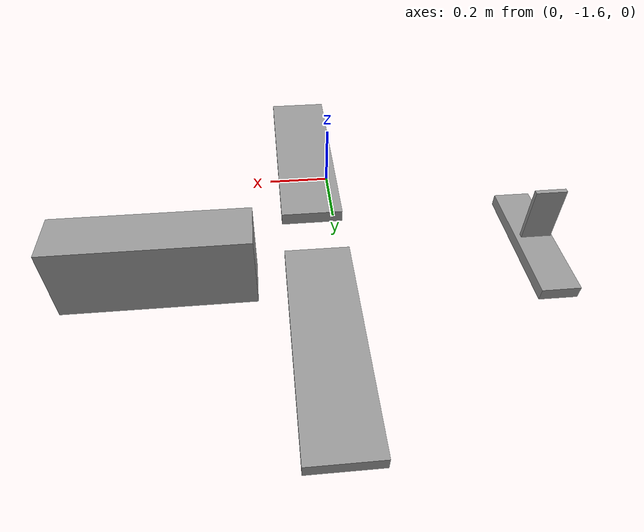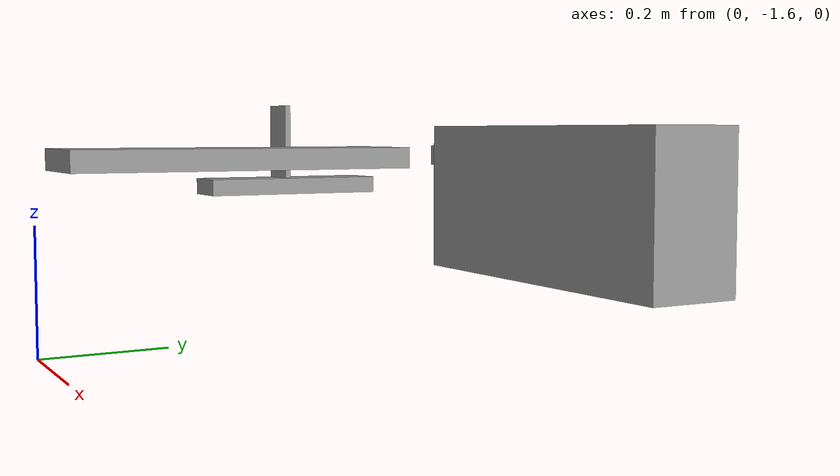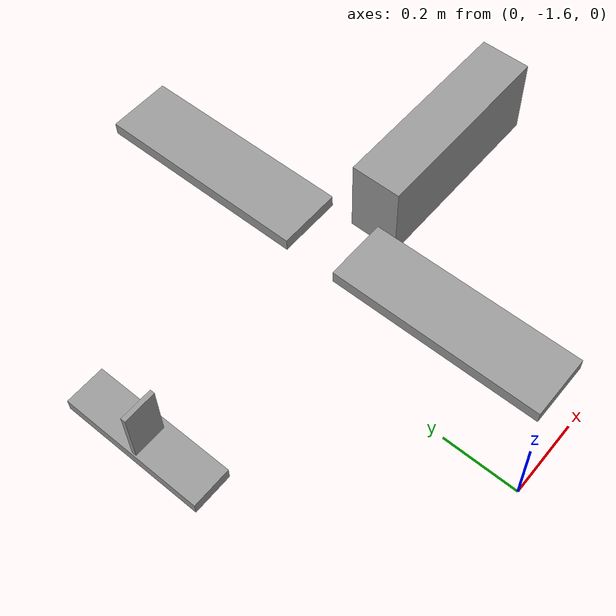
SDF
<?xml version='1.0'?>
<sdf version='1.6'>
  <model name='pitcheron'>
    <pose>0 0 0.246 0 0 0</pose>
    <link name='base_link'>
      <inertial>
        <pose>0 0 0 0 0 0</pose>
        <mass>2</mass>
        <inertia>
          <ixx>0.197563</ixx>
          <ixy>0</ixy>
          <ixz>0</ixz>
          <iyy>0.1458929</iyy>
          <iyz>0</iyz>
          <izz>0.1477</izz>
        </inertia>
      </inertial>
      <pose frame=''>0.5 -1.00013 -0.003977 0 -0.000163 0</pose>
      <collision name='base_link_collision'>
        <laser_retro>0</laser_retro>
        <max_contacts>10</max_contacts>
        <pose frame=''>0 0 0 0 -0 0</pose>
        <geometry>
          <box>
            <size>0.5 0.127582 0.209457</size>
          </box>
        </geometry>
        <surface>
          <contact>
            <ode>
              <max_vel>10</max_vel>
              <min_depth>0.01</min_depth>
            </ode>
          </contact>
        </surface>
      </collision>
      <visual name='base_link_visual'>
        <pose frame=''>0 0 0 0 -0 0</pose>
        <geometry>
          <box>
            <size>0.5 0.127582 0.209457</size>
          </box>
        </geometry>
        <material>
          <lighting>1</lighting>
          <script>
            <uri>file://media/materials/scripts/gazebo.material</uri>
            <name>Gazebo/Grey</name>
          </script>
          <shader type='pixel'/>
          <emissive>0 0 0 1</emissive>
        </material>
        <transparency>0</transparency>
        <cast_shadows>1</cast_shadows>
      </visual>
    </link>
    <plugin name='barometer_plugin' filename='libgazebo_barometer_plugin.so'>
      <robotNamespace/>
      <pubRate>50</pubRate>
      <baroTopic>/baro</baroTopic>
    </plugin>
    <plugin name='groundtruth_plugin' filename='libgazebo_groundtruth_plugin.so'>
      <robotNamespace/>
    </plugin>
    <plugin name='magnetometer_plugin' filename='libgazebo_magnetometer_plugin.so'>
      <robotNamespace/>
      <pubRate>100</pubRate>
      <noiseDensity>0.0004</noiseDensity>
      <randomWalk>6.4e-06</randomWalk>
      <biasCorrelationTime>600</biasCorrelationTime>
      <magTopic>/mag</magTopic>
    </plugin>
    <plugin name='mavlink_interface' filename='libgazebo_mavlink_interface.so'>
      <robotNamespace/>
      <imuSubTopic>/imu</imuSubTopic>
      <magSubTopic>/mag</magSubTopic>
      <baroSubTopic>/baro</baroSubTopic>
      <mavlink_addr>INADDR_ANY</mavlink_addr>
      <mavlink_tcp_port>4560</mavlink_tcp_port>
      <mavlink_udp_port>14560</mavlink_udp_port>
      <serialEnabled>0</serialEnabled>
      <serialDevice>/dev/ttyACM0</serialDevice>
      <baudRate>921600</baudRate>
      <qgc_addr>INADDR_ANY</qgc_addr>
      <qgc_udp_port>14550</qgc_udp_port>
      <sdk_addr>INADDR_ANY</sdk_addr>
      <sdk_udp_port>14540</sdk_udp_port>
      <hil_mode>0</hil_mode>
      <hil_state_level>0</hil_state_level>
      <enable_lockstep>1</enable_lockstep>
      <use_tcp>1</use_tcp>
      <motorSpeedCommandPubTopic>/gazebo/command/motor_speed</motorSpeedCommandPubTopic>
      <control_channels>
        <channel name='left_wing_control'>
          <input_index>0</input_index>
          <input_offset>0</input_offset>
          <input_scaling>1</input_scaling>
          <zero_position_disarmed>0</zero_position_disarmed>
          <zero_position_armed>0</zero_position_armed>
          <joint_control_type>position_kinematic</joint_control_type>
          <joint_name>left_wing_joint</joint_name>
        </channel>
        <channel name='right_wing_control'>
          <input_index>1</input_index>
          <input_offset>0</input_offset>
          <input_scaling>1</input_scaling>
          <zero_position_disarmed>0</zero_position_disarmed>
          <zero_position_armed>0</zero_position_armed>
          <joint_control_type>position_kinematic</joint_control_type>
          <joint_name>right_wing_joint</joint_name>
        </channel>
      </control_channels>
    </plugin>

    <include>
      <uri>model://gps</uri>
      <pose>0.5 -1.00013 0 0 0 0</pose>
      <name>gps</name>
    </include>
    <joint name='gps_joint' type='fixed'>
      <child>gps::link</child>
      <parent>base_link</parent>
    </joint>

    <link name='imu_link'>
      <pose>0.5 -1.000130 0 0 0 0</pose>
      <inertial>
        <pose>0 0 0 0 0 0</pose>
        <mass>0.015</mass>
        <inertia>
          <ixx>1e-05</ixx>
          <ixy>0</ixy>
          <ixz>0</ixz>
          <iyy>1e-05</iyy>
          <iyz>0</iyz>
          <izz>1e-05</izz>
        </inertia>
      </inertial>
    </link>
    <joint name='imu_joint' type='revolute'>
      <parent>base_link</parent>
      <child>imu_link</child>
      <axis>
        <xyz>1 0 0</xyz>
        <limit>
          <lower>0</lower>
          <upper>0</upper>
          <effort>0</effort>
          <velocity>0</velocity>
        </limit>
        <dynamics>
          <spring_reference>0</spring_reference>
          <spring_stiffness>0</spring_stiffness>
        </dynamics>
        <use_parent_model_frame>1</use_parent_model_frame>
      </axis>
    </joint>
    <plugin name='gazebo_imu_plugin' filename='libgazebo_imu_plugin.so'>
      <robotNamespace/>
      <linkName>imu_link</linkName>
      <imuTopic>/imu</imuTopic>
      <gyroscopeNoiseDensity>0.0003394</gyroscopeNoiseDensity>
      <gyroscopeRandomWalk>3.8785e-05</gyroscopeRandomWalk>
      <gyroscopeBiasCorrelationTime>1000.0</gyroscopeBiasCorrelationTime>
      <gyroscopeTurnOnBiasSigma>0.0087</gyroscopeTurnOnBiasSigma>
      <accelerometerNoiseDensity>0.004</accelerometerNoiseDensity>
      <accelerometerRandomWalk>0.006</accelerometerRandomWalk>
      <accelerometerBiasCorrelationTime>300.0</accelerometerBiasCorrelationTime>
      <accelerometerTurnOnBiasSigma>0.196</accelerometerTurnOnBiasSigma>
    </plugin>

    <link name='airspeed_link'>
      <pose>0.5 -1.000130 0 0 0 0</pose>
      <inertial>
        <pose>0 0 0 0 0 0</pose>
        <mass>0.015</mass>
        <inertia>
          <ixx>1e-05</ixx>
          <ixy>0</ixy>
          <ixz>0</ixz>
          <iyy>1e-05</iyy>
          <iyz>0</iyz>
          <izz>1e-05</izz>
        </inertia>
      </inertial>
    </link>
    <joint name='airspeed_joint' type='revolute'>
      <parent>base_link</parent>
      <child>airspeed_link</child>
      <axis>
        <xyz>1 0 0</xyz>
        <limit>
          <lower>0</lower>
          <upper>0</upper>
          <effort>0</effort>
          <velocity>0</velocity>
        </limit>
        <dynamics>
          <spring_reference>0</spring_reference>
          <spring_stiffness>0</spring_stiffness>
        </dynamics>
        <use_parent_model_frame>1</use_parent_model_frame>
      </axis>
    </joint>
    <plugin name='airspeed_plugin' filename='libgazebo_airspeed_plugin.so'>
      <robotNamespace/>
      <linkName>airspeed_link</linkName>
    </plugin>

    <link name='right_wing_link'>
      <inertial>
        <mass>0.00000001</mass>
        <inertia>
          <ixx>0.000001</ixx>
          <ixy>0.0</ixy>
          <iyy>0.000001</iyy>
          <ixz>0.0</ixz>
          <iyz>0.0</iyz>
          <izz>0.000001</izz>
        </inertia>
        <pose>0 0.3 0 0.00 0 0.0</pose>
      </inertial>
      <pose frame=''>0.1 -1.32641 0.052084 0 0 0</pose>
      <visual name='right_wing_visual'>
        <pose frame=''>0 0 0 0 -0 0</pose>
        <geometry>
          <box>
            <size>0.154694 0.521737 0.032125</size>
          </box>
        </geometry>
        <material>
          <lighting>1</lighting>
          <script>
            <uri>file://media/materials/scripts/gazebo.material</uri>
            <name>Gazebo/Grey</name>
          </script>
          <shader type='pixel'/>
          <emissive>0 0 0 1</emissive>
        </material>
        <transparency>0</transparency>
        <cast_shadows>1</cast_shadows>
      </visual>
    </link>
    <joint name='right_wing_joint' type='revolute'>
      <parent>base_link</parent>
      <child>right_wing_link</child>
      <pose frame=''>0 0 0 0 -0 0</pose>
      <axis>
        <xyz>0 1 0</xyz>
        <use_parent_model_frame>0</use_parent_model_frame>
        <limit>
          <!-- -30/+30 deg. -->
          <lower>-0.53</lower>
          <upper>0.53</upper>
        </limit>
        <dynamics>
          <damping>1.000</damping>
        </dynamics>
      </axis>
      <physics>
        <ode>
          <implicit_spring_damper>1</implicit_spring_damper>
        </ode>
      </physics>
    </joint>
    <plugin name='right_wing_plugin' filename='libLiftDragPlugin.so'>
      <a0>0.174533</a0>
      <cla>4.752798721</cla>
      <cda>0.6417112299</cda>
      <cma>0.0</cma>
      <alpha_stall>0.3391428111</alpha_stall>
      <cla_stall>-3.85</cla_stall>
      <cda_stall>-0.9233984055</cda_stall>
      <cma_stall>0</cma_stall>
      <cp>-0.05 -0.45 0.05</cp>
      <area>0.6</area>
      <air_density>1.2041</air_density>
      <forward>1 0 0</forward>
      <upward>0 0 1</upward>
      <link_name>base_link</link_name>
      <control_joint_name>right_wing_joint</control_joint_name>
      <control_joint_rad_to_cl>-0.5</control_joint_rad_to_cl>
      <robotNamespace/>
      <windSubTopic>world_wind</windSubTopic>
    </plugin>

    <link name='left_wing_link'>
      <inertial>
        <mass>0.00000001</mass>
        <inertia>
          <ixx>0.000001</ixx>
          <ixy>0.0</ixy>
          <iyy>0.000001</iyy>
          <ixz>0.0</ixz>
          <iyz>0.0</iyz>
          <izz>0.000001</izz>
        </inertia>
        <pose>0 0.3 0 0.00 0 0.0</pose>
      </inertial>
      <pose frame=''>0.1 -0.676921 0.052084 0 -0.000489 0</pose>
      <visual name='left_wing_visual'>
        <pose frame=''>0 0 0 0 -0 0</pose>
        <geometry>
          <box>
            <size>0.154694 0.521737 0.032125</size>
          </box>
        </geometry>
        <material>
          <lighting>1</lighting>
          <script>
            <uri>file://media/materials/scripts/gazebo.material</uri>
            <name>Gazebo/Grey</name>
          </script>
          <shader type='pixel'/>
          <emissive>0 0 0 1</emissive>
        </material>
        <transparency>0</transparency>
        <cast_shadows>1</cast_shadows>
      </visual>
    </link>
    <joint name='left_wing_joint' type='revolute'>
      <parent>base_link</parent>
      <child>left_wing_link</child>
      <pose frame=''>0 0 0 0 -0 0</pose>
      <axis>
        <xyz>0 1 0</xyz>
        <use_parent_model_frame>0</use_parent_model_frame>
        <limit>
          <lower>-0.53</lower>
          <upper>0.53</upper>
        </limit>
        <dynamics>
          <damping>1.000</damping>
        </dynamics>
      </axis>
      <physics>
        <ode>
          <implicit_spring_damper>1</implicit_spring_damper>
        </ode>
      </physics>
    </joint>
    <plugin name='left_wing_plugin' filename='libLiftDragPlugin.so'>
      <a0>>0.174533</a0>
      <cla>4.752798721</cla>
      <cda>0.6417112299</cda>
      <cma>0.0</cma>
      <alpha_stall>0.3391428111</alpha_stall>
      <cla_stall>-3.85</cla_stall>
      <cda_stall>-0.9233984055</cda_stall>
      <cma_stall>0</cma_stall>
      <cp>-0.05 0.45 0.05</cp>
      <area>0.6</area>
      <air_density>1.2041</air_density>
      <forward>1 0 0</forward>
      <upward>0 0 1</upward>
      <link_name>base_link</link_name>
      <control_joint_name>left_wing_joint</control_joint_name>
      <control_joint_rad_to_cl>-0.5</control_joint_rad_to_cl>
      <robotNamespace/>
      <windSubTopic>world_wind</windSubTopic>
    </plugin>

    <link name='elevator_link'>
      <inertial>
        <mass>0.00000001</mass>
        <inertia>
          <ixx>0.000001</ixx>
          <ixy>0.0</ixy>
          <iyy>0.000001</iyy>
          <ixz>0.0</ixz>
          <iyz>0.0</iyz>
          <izz>0.000001</izz>
        </inertia>
        <pose> 0 0 0 0 0 0</pose>
      </inertial>
      <pose frame=''>-0.47481 -0.996527 -0.018069 0 -0.000652 0</pose>
      <visual name='elevator_visual'>
        <pose frame=''>0 0 0 0 -0 0</pose>
        <geometry>
          <box>
            <size>0.096383 0.353164 0.032125</size>
          </box>
        </geometry>
        <material>
          <lighting>1</lighting>
          <script>
            <uri>file://media/materials/scripts/gazebo.material</uri>
            <name>Gazebo/Grey</name>
          </script>
          <shader type='pixel'/>
          <emissive>0 0 0 1</emissive>
        </material>
        <transparency>0</transparency>
        <cast_shadows>1</cast_shadows>
      </visual>
    </link>
    <joint name='elevator_joint' type='fixed'>
      <parent>base_link</parent>
      <child>elevator_link</child>
      <pose frame=''>0 0 0 0 -0 0</pose>
      <axis>
        <xyz>0 1 0</xyz>
        <use_parent_model_frame>0</use_parent_model_frame>
        <limit>
          <lower>-0.53</lower>
          <upper>0.53</upper>
        </limit>
        <dynamics>
          <damping>1.000</damping>
        </dynamics>
      </axis>
      <physics>
        <ode>
          <implicit_spring_damper>1</implicit_spring_damper>
        </ode>
      </physics>
    </joint>
    <plugin name='elevator_plugin' filename='libLiftDragPlugin.so'>
      <a0>-3</a0>
      <cla>4.752798721</cla>
      <cda>0.6417112299</cda>
      <cma>0.0</cma>
      <alpha_stall>0.3391428111</alpha_stall>
      <cla_stall>-3.85</cla_stall>
      <cda_stall>-0.9233984055</cda_stall>
      <cma_stall>0</cma_stall>
      <cp>-0.5 0 0</cp>
      <area>0.01</area>
      <air_density>1.2041</air_density>
      <forward>1 0 0</forward>
      <upward>0 0 1</upward>
      <link_name>base_link</link_name>
      <control_joint_name>elevator_joint</control_joint_name>
      <control_joint_rad_to_cl>-4.0</control_joint_rad_to_cl>
      <robotNamespace/>
      <windSubTopic>world_wind</windSubTopic>
    </plugin>

    <link name='rudder_link'>
      <inertial>
        <mass>0.00000001</mass>
        <inertia>
          <ixx>0.000001</ixx>
          <ixy>0.0</ixy>
          <iyy>0.000001</iyy>
          <ixz>0.0</ixz>
          <iyz>0.0</iyz>
          <izz>0.000001</izz>
        </inertia>
        <pose>0 0 0 0 0 0 </pose>
      </inertial>
      <pose frame=''>-0.480521 -1.00729 0.067402 0 -0.000815 0</pose>
      <visual name='rudder_visual'>
        <pose frame=''>0 0 0 0 -0 0</pose>
        <geometry>
          <box>
            <size>0.078339 0.011406 0.155617</size>
          </box>
        </geometry>
        <material>
          <lighting>1</lighting>
          <script>
            <uri>file://media/materials/scripts/gazebo.material</uri>
            <name>Gazebo/Grey</name>
          </script>
          <shader type='pixel'/>
          <emissive>0 0 0 1</emissive>
        </material>
        <transparency>0</transparency>
        <cast_shadows>1</cast_shadows>
      </visual>
    </link>
    <joint name='rudder_joint' type='fixed'>
      <parent>base_link</parent>
      <child>rudder_link</child>
      <pose frame=''>0 0 0 0 -0 0</pose>
      <axis>
        <xyz>0 0 1</xyz>
        <use_parent_model_frame>0</use_parent_model_frame>
        <limit>
          <lower>-0.53</lower>
          <upper>0.53</upper>
        </limit>
        <dynamics>
          <damping>1.000</damping>
        </dynamics>
      </axis>
      <physics>
        <ode>
          <limit>
            <cfm>0</cfm>
            <erp>0.2</erp>
          </limit>
          <suspension>
            <cfm>0</cfm>
            <erp>0.2</erp>
          </suspension>
        </ode>
      </physics>
    </joint>
    <plugin name='rudder_plugin' filename='libLiftDragPlugin.so'>
      <a0>0.0</a0>
      <cla>4.752798721</cla>
      <cda>0.6417112299</cda>
      <cma>0.0</cma>
      <alpha_stall>0.3391428111</alpha_stall>
      <cla_stall>-3.85</cla_stall>
      <cda_stall>-0.9233984055</cda_stall>
      <cma_stall>0</cma_stall>
      <cp>-0.5 0 0.05</cp>
      <area>0.02</area>
      <air_density>1.2041</air_density>
      <forward>1 0 0</forward>
      <upward>0 1 0</upward>
      <link_name>base_link</link_name>
      <control_joint_name>rudder_joint</control_joint_name>
      <control_joint_rad_to_cl>4.0</control_joint_rad_to_cl>
      <robotNamespace/>
      <windSubTopic>world_wind</windSubTopic>
    </plugin>

    <static>0</static>
  </model>
</sdf>

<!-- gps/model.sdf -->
<sdf version="1.6">
  <model name="gps">
    <link name="link">
      <pose>0 0 0 0 0 0</pose>
      <inertial>
        <pose>0 0 0 0 0 0</pose>
        <mass>0.015</mass>
        <inertia>
          <ixx>1e-05</ixx>
          <ixy>0</ixy>
          <ixz>0</ixz>
          <iyy>1e-05</iyy>
          <iyz>0</iyz>
          <izz>1e-05</izz>
        </inertia>
      </inertial>
      <visual name="visual">
        <geometry>
          <cylinder>
            <radius>0.01</radius>
            <length>0.002</length>
          </cylinder>
        </geometry>
        <material>
          <script>
            <name>Gazebo/Black</name>
            <uri>file://usr/share/gz/gz-sim8/media/gazebo.material</uri>
          </script>
        </material>
      </visual>
      <sensor name="gps" type="gps">
        <pose>0 0 0 0 0 0</pose>
        <update_rate>5.0</update_rate>
        <always_on>true</always_on>
        <visualize>false</visualize>
        <!-- GpsSensor noise currently not used -->
        <plugin name="gps_plugin" filename="libgazebo_gps_plugin.so">
          <robotNamespace></robotNamespace>
          <gpsNoise>true</gpsNoise>
          <gpsXYRandomWalk>2.0</gpsXYRandomWalk>
          <gpsZRandomWalk>4.0</gpsZRandomWalk>
          <gpsXYNoiseDensity>2.0e-4</gpsXYNoiseDensity>
          <gpsZNoiseDensity>4.0e-4</gpsZNoiseDensity>
          <gpsVXYNoiseDensity>0.2</gpsVXYNoiseDensity>
          <gpsVZNoiseDensity>0.4</gpsVZNoiseDensity>
        </plugin>
      </sensor>
    </link>
  </model>
</sdf>
